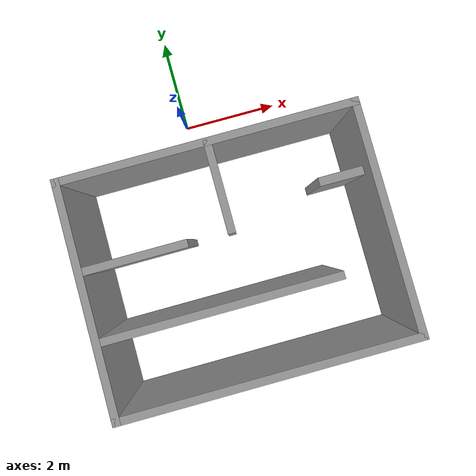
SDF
<?xml version='1.0'?>
<sdf version='1.7'>
  <model name='home2'>
    <pose>0.35 -2.6525 0 0 -0 0</pose>
    <link name='Door_0'>
      <collision name='Door_0_Collision'>
        <geometry>
          <box>
            <size>0.9 0.17 2</size>
          </box>
        </geometry>
        <pose>0 0 1 0 -0 0</pose>
      </collision>
      <visual name='Door_0_Visual'>
        <pose>0 0 1 0 -0 0</pose>
        <geometry>
          <box>
            <size>0.9 0.17 2</size>
          </box>
        </geometry>
        <material>
          <script>
            <uri>file://media/materials/scripts/gazebo.material</uri>
            <name>Gazebo/Grey</name>
          </script>
        </material>
      </visual>
      <pose>2.3 0.5625 0 0 -0 0</pose>
    </link>
    <link name='Wall_0'>
      <collision name='Wall_0_Collision'>
        <geometry>
          <box>
            <size>5.75 0.15 2.5</size>
          </box>
        </geometry>
        <pose>0 0 1.25 0 -0 0</pose>
      </collision>
      <visual name='Wall_0_Visual'>
        <pose>0 0 1.25 0 -0 0</pose>
        <geometry>
          <box>
            <size>5.75 0.15 2.5</size>
          </box>
        </geometry>
        <material>
          <script>
            <uri>file://media/materials/scripts/gazebo.material</uri>
            <name>Gazebo/Grey</name>
          </script>
          <ambient>1 1 1 1</ambient>
        </material>
        <meta>
          <layer>0</layer>
        </meta>
      </visual>
      <pose>-0 -2.5775 0 0 -0 0</pose>
    </link>
    <link name='Wall_1'>
      <collision name='Wall_1_Collision'>
        <geometry>
          <box>
            <size>4.5 0.15 2.5</size>
          </box>
        </geometry>
        <pose>0 0 1.25 0 -0 0</pose>
      </collision>
      <visual name='Wall_1_Visual'>
        <pose>0 0 1.25 0 -0 0</pose>
        <geometry>
          <box>
            <size>4.5 0.15 2.5</size>
          </box>
        </geometry>
        <material>
          <script>
            <uri>file://media/materials/scripts/gazebo.material</uri>
            <name>Gazebo/Grey</name>
          </script>
          <ambient>1 1 1 1</ambient>
        </material>
        <meta>
          <layer>0</layer>
        </meta>
      </visual>
      <pose>2.8 -0.4025 0 0 -0 1.5708</pose>
    </link>
    <link name='Wall_2'>
      <collision name='Wall_2_Collision'>
        <geometry>
          <box>
            <size>5.75 0.15 2.5</size>
          </box>
        </geometry>
        <pose>0 0 1.25 0 -0 0</pose>
      </collision>
      <visual name='Wall_2_Visual'>
        <pose>0 0 1.25 0 -0 0</pose>
        <geometry>
          <box>
            <size>5.75 0.15 2.5</size>
          </box>
        </geometry>
        <material>
          <script>
            <uri>file://media/materials/scripts/gazebo.material</uri>
            <name>Gazebo/Grey</name>
          </script>
          <ambient>1 1 1 1</ambient>
        </material>
        <meta>
          <layer>0</layer>
        </meta>
      </visual>
      <pose>-0 1.7725 0 0 -0 3.14159</pose>
    </link>
    <link name='Wall_3'>
      <collision name='Wall_3_Collision'>
        <geometry>
          <box>
            <size>4.5 0.15 2.5</size>
          </box>
        </geometry>
        <pose>0 0 1.25 0 -0 0</pose>
      </collision>
      <visual name='Wall_3_Visual'>
        <pose>0 0 1.25 0 -0 0</pose>
        <geometry>
          <box>
            <size>4.5 0.15 2.5</size>
          </box>
        </geometry>
        <material>
          <script>
            <uri>file://media/materials/scripts/gazebo.material</uri>
            <name>Gazebo/Grey</name>
          </script>
          <ambient>1 1 1 1</ambient>
        </material>
        <meta>
          <layer>0</layer>
        </meta>
      </visual>
      <pose>-2.8 -0.4025 0 0 -0 -1.5708</pose>
    </link>
    <link name='Wall_5'>
      <collision name='Wall_5_Collision'>
        <geometry>
          <box>
            <size>2 0.15 2.5</size>
          </box>
        </geometry>
        <pose>0 0 1.25 0 -0 0</pose>
      </collision>
      <visual name='Wall_5_Visual'>
        <pose>0 0 1.25 0 -0 0</pose>
        <geometry>
          <box>
            <size>2 0.15 2.5</size>
          </box>
        </geometry>
        <material>
          <script>
            <uri>file://media/materials/scripts/gazebo.material</uri>
            <name>Gazebo/Grey</name>
          </script>
          <ambient>1 1 1 1</ambient>
        </material>
        <meta>
          <layer>0</layer>
        </meta>
      </visual>
      <pose>-1.785 0.1025 0 0 -0 0</pose>
    </link>
    <link name='Wall_7'>
      <collision name='Wall_7_Collision'>
        <geometry>
          <box>
            <size>1.75 0.15 2.5</size>
          </box>
        </geometry>
        <pose>0 0 1.25 0 -0 0</pose>
      </collision>
      <visual name='Wall_7_Visual'>
        <pose>0 0 1.25 0 -0 0</pose>
        <geometry>
          <box>
            <size>1.75 0.15 2.5</size>
          </box>
        </geometry>
        <material>
          <script>
            <uri>file://media/materials/scripts/gazebo.material</uri>
            <name>Gazebo/Grey</name>
          </script>
          <ambient>1 1 1 1</ambient>
        </material>
        <meta>
          <layer>0</layer>
        </meta>
      </visual>
      <pose>0.02 0.9325 0 0 -0 -1.5708</pose>
    </link>
    <link name='Wall_9'>
      <collision name='Wall_9_Collision'>
        <geometry>
          <box>
            <size>4.5 0.15 2.5</size>
          </box>
        </geometry>
        <pose>0 0 1.25 0 -0 0</pose>
      </collision>
      <visual name='Wall_9_Visual'>
        <pose>0 0 1.25 0 -0 0</pose>
        <geometry>
          <box>
            <size>4.5 0.15 2.5</size>
          </box>
        </geometry>
        <material>
          <script>
            <uri>file://media/materials/scripts/gazebo.material</uri>
            <name>Gazebo/Grey</name>
          </script>
          <ambient>1 1 1 1</ambient>
        </material>
        <meta>
          <layer>0</layer>
        </meta>
      </visual>
      <pose>-0.495 -1.1775 0 0 -0 0</pose>
    </link>
    <static>1</static>
  </model>
</sdf>
